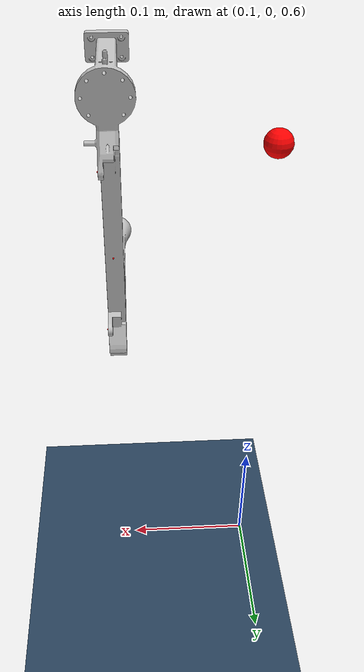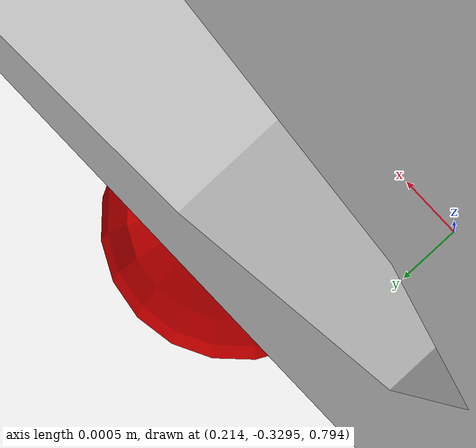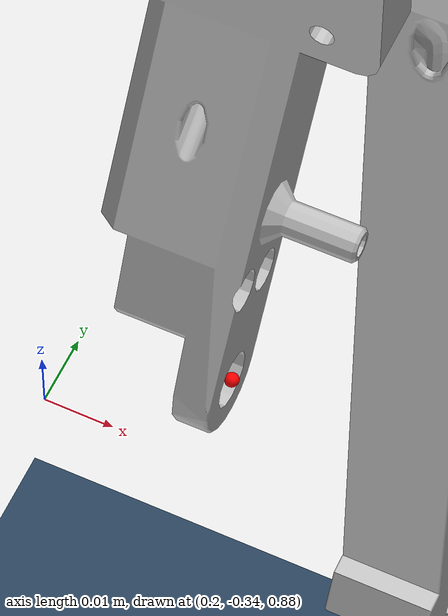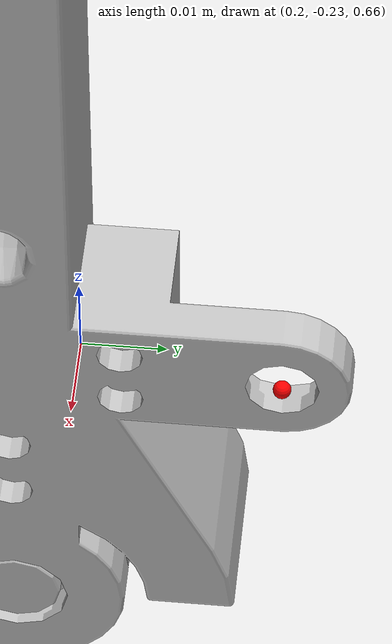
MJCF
<mujoco model="v2_4">
  <compiler angle="radian"/>
  <option timestep="0.001" iterations="2000" gravity="0 0 -9.8" tolerance="1e-10"/>

  <default>
    <geom density="418"/>
  </default>

  <asset>
    <texture name="grid" type="2d" builtin="checker" rgb1=".1 .2 .3"
      rgb2=".2 .3 .4" width="300" height="300"/>
    <material name="grid" texture="grid" texrepeat="8 8" reflectance=".2"/>

    <mesh name="base_link" file="base_single.STL"/>
    <mesh name="LF_Thigh" file="LF_Thigh.STL"/>
    <mesh name="LF_Calf" file="LF_Calf.STL"/>
    <mesh name="RF_Thigh" file="RF_Thigh.STL"/>
    <mesh name="RF_Calf" file="RF_Calf.STL"/>
    <mesh name="LB_Thigh" file="LB_Thigh.STL"/>
    <mesh name="LB_Calf" file="LB_Calf.STL"/>
    <mesh name="RB_Thigh" file="RB_Thigh.STL"/>
    <mesh name="RB_Calf" file="RB_Calf.STL"/>
    <mesh name="LF_MAA_UPLink" file="LF_MAA_UPLink.STL"/>
    <mesh name="LF_MAA_FM_Link" file="LF_MAA_FM_Link.STL"/>
    <mesh name="LF_MAA_LOLink" file="LF_MAA_LOLink.STL"/>
    <mesh name="RF_MAA_UPLink" file="RF_MAA_UPLink.STL"/>
    <mesh name="RF_MAA_FM_Link" file="RF_MAA_FM_Link.STL"/>
    <mesh name="RF_MAA_LOLink" file="RF_MAA_LOLink.STL"/>
    <mesh name="LB_MAA_UPLink" file="LB_MAA_UPLink.STL"/>
    <mesh name="LB_MAA_FM_Link" file="LB_MAA_FM_Link.STL"/>
    <mesh name="LB_MAA_LOLink" file="LB_MAA_LOLink.STL"/>
    <mesh name="RB_MAA_UPLink" file="RB_MAA_UPLink.STL"/>
    <mesh name="RB_MAA_FM_Link" file="RB_MAA_FM_Link.STL"/>
    <mesh name="RB_MAA_LOLink" file="RB_MAA_LOLink.STL"/>
    <mesh name="LF_BAA_UPLink" file="LF_BAA_UPLink.STL"/>
    <mesh name="LF_BAA_FM_Link" file="LF_BAA_FM_Link.STL"/>
    <mesh name="LF_BAA_LOLink" file="LF_BAA_LOLink.STL"/>
    <mesh name="RF_BAA_UPLink" file="RF_BAA_UPLink.STL"/>
    <mesh name="RF_BAA_FM_Link" file="RF_BAA_FM_Link.STL"/>
    <mesh name="RF_BAA_LOLink" file="RF_BAA_LOLink.STL"/>
    <mesh name="LB_BAA_UPLink" file="LB_BAA_UPLink.STL"/>
    <mesh name="LB_BAA_FM_Link" file="LB_BAA_FM_Link.STL"/>
    <mesh name="LB_BAA_LOLink" file="LB_BAA_LOLink.STL"/>
    <mesh name="RB_BAA_UPLink" file="RB_BAA_UPLink.STL"/>
    <mesh name="RB_BAA_FM_LINK" file="RB_BAA_FM_LINK.STL"/>
    <mesh name="RB_BAA_LOLink" file="RB_BAA_LOLink.STL"/>
  </asset>

  <worldbody>
    <light name="top" pos="0 0 5"/>
    <geom size="10 10 .01" type="plane" material="grid" friction="1 0.005 0.0001"/>

    <!-- horizontal base -->

    <!-- vertical base  -->

    <body name="base" pos="0.1 0 1">
      <geom type="mesh" rgba="0.75294 0.75294 0.75294 1" mesh="base_link" mass="0.155" contype="0" conaffinity="0"/>
      <geom type="sphere" size="0.01" rgba="1 0 0 1" mass="0.03108" contype="0" conaffinity="0"/>

      <body name="RB_Thigh" pos="0.1245 -0.235 -0.105">
        <joint name="RB_Shoulder" pos="0 0 0" axis="-1 0 0" range="-3.046 3.046" damping="0" stiffness="0" springref="0"/>
        <geom type="mesh" rgba="0.752941 0.752941 0.752941 1" mesh="RB_Thigh" mass="0.086" contype="0" conaffinity="0"/>
        <body name="RB_Calf" pos="0 0 -0.25">
          <joint name="RB_Elbow" pos="0 0 0" axis="-1 0 0" range="-3.57 3.628" damping="0" stiffness="0" springref="0"/>
          <geom type="mesh" rgba="0.752941 0.752941 0.752941 1" mesh="RB_Calf" mass="0.1033" friction="1 0.005 0.0001"/>
        </body>

      </body>

      <body name="RB_MAA_UPLink" pos="0.125 -0.175 -0.105">
        <joint name="RB_MAA_UpJoint" pos="0 0 0" axis="-1 0 0" damping="0" stiffness="0" springref="0"/>
        <geom type="sphere" size="0.001" rgba="1 0 0 1" mass="0.03108" contype="0" conaffinity="0"/>

        <body name="RB_MAA_FM_Link" pos="-0.01 -0.015 -0.105">
          <joint name="RB_MAA_SlideJoint" pos="0 0 0" axis="0 -0.141421 -0.989949" type="slide" damping="22.68" stiffness="637.52" springref="-0.019065093741353706"/>
          <geom type="sphere" size="0.001" rgba="1 0 0 1" mass="0.12432" contype="0" conaffinity="0"/>

          <body name="RB_MAA_LOLink" pos="0.01 -0.015 -0.105">
            <joint name="RB_MAA_FM_SlideJoint" pos="0 0 0" axis="0 -0.141421 -0.989949" type="slide" damping="22.68" stiffness="637.52" springref="-0.019065093741353706"/>
            <geom type="sphere" size="0.001" rgba="1 0 0 1" mass="0.03108" contype="0" conaffinity="0"/>
          </body>

        </body>

      </body>

      <body name="RB_BAA_UPLink" pos="0.125 -0.335 -0.105">
        <joint name="RB_BAA_UpJoint" pos="0 0 0" axis="-1 0 0" damping="0" stiffness="0" springref="0"/>
        <geom type="sphere" size="0.001" rgba="1 0 0 1" mass="0.04544333333" contype="0" conaffinity="0"/>

        <body name="RB_BAA_FM_LINK" pos="-0.01 0.00669873 -0.1">
          <joint name="RB_BAA_SlideJoint" pos="0 0 0" axis="0 0.0668375 -0.997764" type="slide" damping="21.8" stiffness="631.6" springref="0.025775886229521552"/>
          <geom type="sphere" size="0.001" rgba="1 0 0 1" mass="0.1817733333" contype="0" conaffinity="0"/>

          <body name="RB_BAA_LOLink" pos="0.01 0.00669873 -0.1">
            <joint name="RB_BAA_FM_SlideJoint" pos="0 0 0" axis="0 0.0668375 -0.997764" type="slide" damping="21.8" stiffness="631.6" springref="0.025775886229521552"/>
            <geom type="sphere" size="0.001" rgba="1 0 0 1" mass="0.04544333333" contype="0" conaffinity="0"/>
          </body>

        </body>

      </body>

    </body>

  </worldbody>

  <!-- 增加在RB_BAA_LowerJoint等关节中加入8个位置控制器，要求增加位置限制 -->
  <actuator>
    <motor joint="RB_MAA_SlideJoint" ctrllimited="true" ctrlrange="-200 200" />
    <motor joint="RB_MAA_FM_SlideJoint" ctrllimited="true" ctrlrange="-200 200" />
    <motor joint="RB_BAA_SlideJoint" ctrllimited="true" ctrlrange="-200 200" />
    <motor joint="RB_BAA_FM_SlideJoint" ctrllimited="true" ctrlrange="-200 200" />
  </actuator>

  <!-- 建立并联关系，如 RB_BAA_LOLink 应该与 RB_Calf 连接 -->
  <equality>
    <connect name="RB_MAA_LOLink" body1="RB_MAA_LOLink" body2="RB_Thigh" anchor="0 0 0" solref="0.001 1" solimp="0.95 0.99 0.00001 0.1 2"/>
    <connect name="RB_BAA_LOLink" body1="RB_BAA_LOLink" body2="RB_Calf" anchor="0 0 0" solref="0.001 1" solimp="0.95 0.99 0.00001 0.1 2"/>

    <!-- FM 的相等约束 -->
    <joint name="RB_MAA_FM" joint1="RB_MAA_SlideJoint" joint2="RB_MAA_FM_SlideJoint" solimp="0.95 0.99 0.00001 0.1 2"/>
    <joint name="RB_BAA_FM" joint1="RB_BAA_SlideJoint" joint2="RB_BAA_FM_SlideJoint" solimp="0.95 0.99 0.00001 0.1 2"/>
  </equality>

  <sensor>
  </sensor>

</mujoco>
